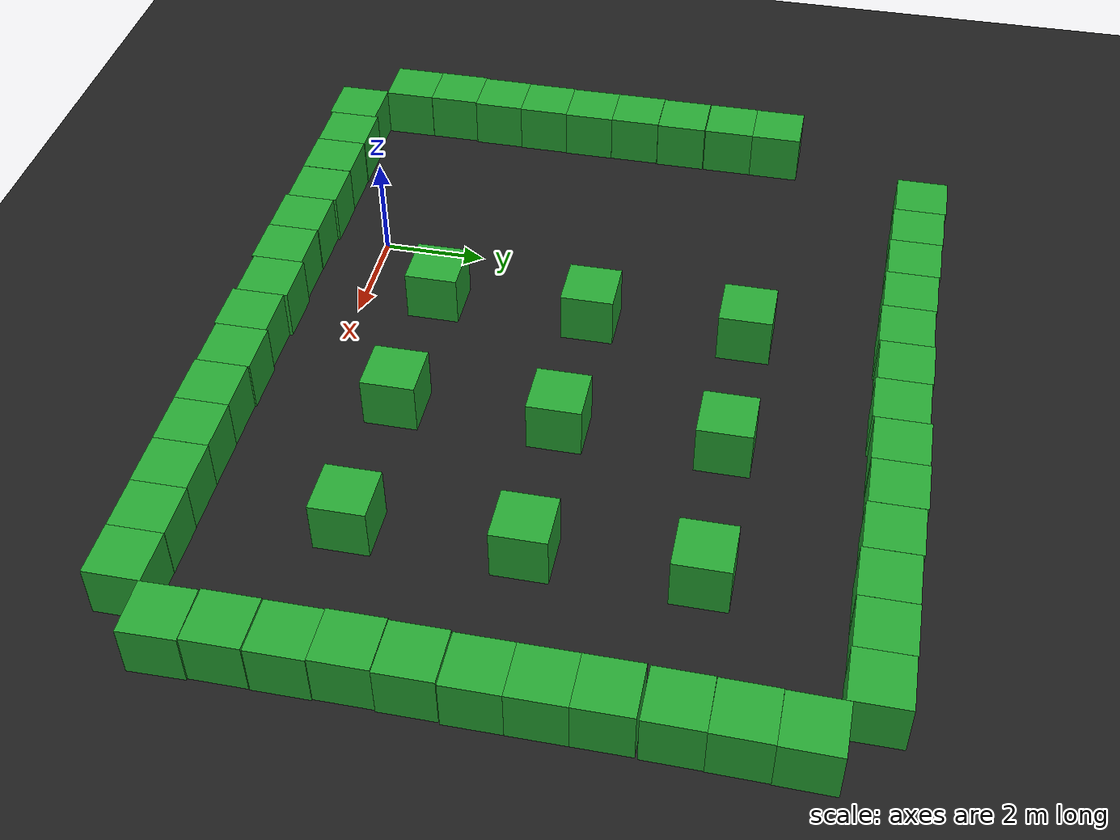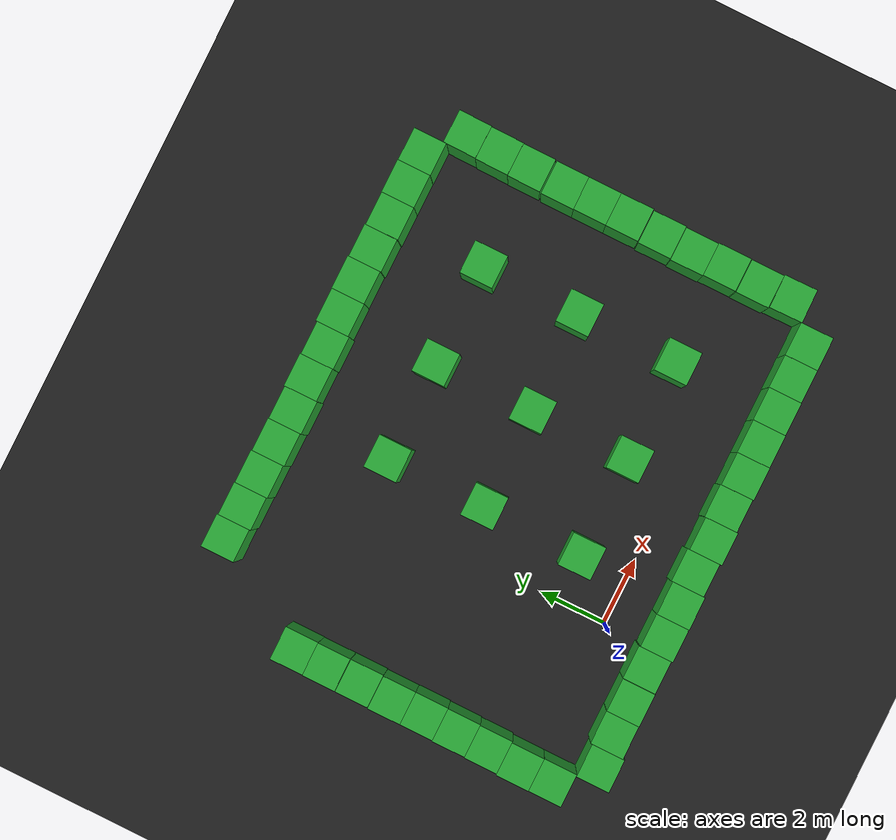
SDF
<sdf version="1.4">
 <world name="default">
  <light name="sun" type="directional">
   <pose>0 0 10 0 -0 0</pose>
   <diffuse>0.8 0.8 0.8 1</diffuse>
   <specular>0.2 0.2 0.2 1</specular>
   <attenuation>
    <range>1000</range>
    <constant>0.9</constant>
    <linear>0.01</linear>
    <quadratic>0.001</quadratic>
   </attenuation>
   <direction>-0.5 0.1 -0.9</direction>
  </light>
  <model name="ground_plane">
   <static>1</static>
   <link name="link">
    <collision name="collision">
     <geometry><plane><normal>0 0 1</normal><size>100 100</size></plane></geometry>
     <surface><friction><ode><mu>100</mu><mu2>50</mu2></ode></friction></surface>
    </collision>
    <visual name="visual">
     <cast_shadows>0</cast_shadows>
     <geometry><plane><normal>0 0 1</normal><size>100 100</size></plane></geometry>
     <material>
      <script><uri>file://media/materials/scripts/gazebo.material</uri><name>Gazebo/Black</name></script>
     </material>
    </visual>
    <velocity_decay><linear>0</linear><angular>0</angular></velocity_decay>
   </link>
  </model>
  <physics type="ode">
   <max_step_size>0.001</max_step_size>
   <real_time_factor>1</real_time_factor>
   <real_time_update_rate>1000</real_time_update_rate>
   <gravity>0 0 -9.8</gravity>
  </physics>
  <scene><ambient>0.4 0.4 0.4 1</ambient><background>0.7 0.7 0.7 1</background><shadows>1</shadows></scene>
  <spherical_coordinates>
   <surface_model>EARTH_WGS84</surface_model>
   <latitude_deg>0</latitude_deg>
   <longitude_deg>0</longitude_deg>
   <elevation>0</elevation>
   <heading_deg>0</heading_deg>
  </spherical_coordinates>
  <model name="unit_box_1">
   <pose>7.48187 1.49496 0.5 0 -0 0</pose>
   <link name="link">
    <inertial>
     <mass>1</mass>
     <inertia><ixx>1</ixx><ixy>0</ixy><ixz>0</ixz><iyy>1</iyy><iyz>0</iyz><izz>1</izz></inertia>
    </inertial>
    <collision name="collision"><geometry><box><size>1 1 1</size></box></geometry></collision>
    <visual name="visual">
     <geometry><box><size>1 1 1</size></box></geometry>
     <material>
      <script><uri>file://media/materials/scripts/gazebo.material</uri><name>Gazebo/Green</name></script>
     </material>
    </visual>
    <velocity_decay><linear>0</linear><angular>0</angular></velocity_decay>
   </link>
   <static>0</static>
  </model>
  <model name="unit_box_2">
   <pose>4.47149 1.48551 0.5 0 -0 0</pose>
   <link name="link">
    <inertial>
     <mass>1</mass>
     <inertia><ixx>1</ixx><ixy>0</ixy><ixz>0</ixz><iyy>1</iyy><iyz>0</iyz><izz>1</izz></inertia>
    </inertial>
    <collision name="collision"><geometry><box><size>1 1 1</size></box></geometry></collision>
    <visual name="visual">
     <geometry><box><size>1 1 1</size></box></geometry>
     <material>
      <script><uri>file://media/materials/scripts/gazebo.material</uri><name>Gazebo/Green</name></script>
     </material>
    </visual>
    <velocity_decay><linear>0</linear><angular>0</angular></velocity_decay>
   </link>
   <static>0</static>
  </model>
  <model name="unit_box_3">
   <pose>1.4769 1.48379 0.5 0 -0 0</pose>
   <link name="link">
    <inertial>
     <mass>1</mass>
     <inertia><ixx>1</ixx><ixy>0</ixy><ixz>0</ixz><iyy>1</iyy><iyz>0</iyz><izz>1</izz></inertia>
    </inertial>
    <collision name="collision"><geometry><box><size>1 1 1</size></box></geometry></collision>
    <visual name="visual">
     <geometry><box><size>1 1 1</size></box></geometry>
     <material>
      <script><uri>file://media/materials/scripts/gazebo.material</uri><name>Gazebo/Green</name></script>
     </material>
    </visual>
    <velocity_decay><linear>0</linear><angular>0</angular></velocity_decay>
   </link>
   <static>0</static>
  </model>
  <model name="unit_box_4">
   <pose>7.47944 4.53436 0.5 0 -0 0</pose>
   <link name="link">
    <inertial>
     <mass>1</mass>
     <inertia><ixx>1</ixx><ixy>0</ixy><ixz>0</ixz><iyy>1</iyy><iyz>0</iyz><izz>1</izz></inertia>
    </inertial>
    <collision name="collision"><geometry><box><size>1 1 1</size></box></geometry></collision>
    <visual name="visual">
     <geometry><box><size>1 1 1</size></box></geometry>
     <material>
      <script><uri>file://media/materials/scripts/gazebo.material</uri><name>Gazebo/Green</name></script>
     </material>
    </visual>
    <velocity_decay><linear>0</linear><angular>0</angular></velocity_decay>
   </link>
   <static>0</static>
  </model>
  <model name="unit_box_5">
   <pose>4.4867 4.49816 0.5 0 -0 0</pose>
   <link name="link">
    <inertial>
     <mass>1</mass>
     <inertia><ixx>1</ixx><ixy>0</ixy><ixz>0</ixz><iyy>1</iyy><iyz>0</iyz><izz>1</izz></inertia>
    </inertial>
    <collision name="collision"><geometry><box><size>1 1 1</size></box></geometry></collision>
    <visual name="visual">
     <geometry><box><size>1 1 1</size></box></geometry>
     <material>
      <script><uri>file://media/materials/scripts/gazebo.material</uri><name>Gazebo/Green</name></script>
     </material>
    </visual>
    <velocity_decay><linear>0</linear><angular>0</angular></velocity_decay>
   </link>
   <static>0</static>
  </model>
  <model name="unit_box_6">
   <pose>1.51126 4.51616 0.5 0 -0 0</pose>
   <link name="link">
    <inertial>
     <mass>1</mass>
     <inertia><ixx>1</ixx><ixy>0</ixy><ixz>0</ixz><iyy>1</iyy><iyz>0</iyz><izz>1</izz></inertia>
    </inertial>
    <collision name="collision"><geometry><box><size>1 1 1</size></box></geometry></collision>
    <visual name="visual">
     <geometry><box><size>1 1 1</size></box></geometry>
     <material>
      <script><uri>file://media/materials/scripts/gazebo.material</uri><name>Gazebo/Green</name></script>
     </material>
    </visual>
    <velocity_decay><linear>0</linear><angular>0</angular></velocity_decay>
   </link>
   <static>0</static>
  </model>
  <model name="unit_box_7">
   <pose>7.49678 7.51065 0.5 0 -0 0</pose>
   <link name="link">
    <inertial>
     <mass>1</mass>
     <inertia><ixx>1</ixx><ixy>0</ixy><ixz>0</ixz><iyy>1</iyy><iyz>0</iyz><izz>1</izz></inertia>
    </inertial>
    <collision name="collision"><geometry><box><size>1 1 1</size></box></geometry></collision>
    <visual name="visual">
     <geometry><box><size>1 1 1</size></box></geometry>
     <material>
      <script><uri>file://media/materials/scripts/gazebo.material</uri><name>Gazebo/Green</name></script>
     </material>
    </visual>
    <velocity_decay><linear>0</linear><angular>0</angular></velocity_decay>
   </link>
   <static>0</static>
  </model>
  <model name="unit_box_8">
   <pose>4.47408 7.49427 0.5 0 -0 0</pose>
   <link name="link">
    <inertial>
     <mass>1</mass>
     <inertia><ixx>1</ixx><ixy>0</ixy><ixz>0</ixz><iyy>1</iyy><iyz>0</iyz><izz>1</izz></inertia>
    </inertial>
    <collision name="collision"><geometry><box><size>1 1 1</size></box></geometry></collision>
    <visual name="visual">
     <geometry><box><size>1 1 1</size></box></geometry>
     <material>
      <script><uri>file://media/materials/scripts/gazebo.material</uri><name>Gazebo/Green</name></script>
     </material>
    </visual>
    <velocity_decay><linear>0</linear><angular>0</angular></velocity_decay>
   </link>
   <static>0</static>
  </model>
  <model name="unit_box_9">
   <pose>1.50449 7.50181 0.5 0 -0 0</pose>
   <link name="link">
    <inertial>
     <mass>1</mass>
     <inertia><ixx>1</ixx><ixy>0</ixy><ixz>0</ixz><iyy>1</iyy><iyz>0</iyz><izz>1</izz></inertia>
    </inertial>
    <collision name="collision"><geometry><box><size>1 1 1</size></box></geometry></collision>
    <visual name="visual">
     <geometry><box><size>1 1 1</size></box></geometry>
     <material>
      <script><uri>file://media/materials/scripts/gazebo.material</uri><name>Gazebo/Green</name></script>
     </material>
    </visual>
    <velocity_decay><linear>0</linear><angular>0</angular></velocity_decay>
   </link>
   <static>0</static>
  </model>
  <model name="unit_box_1_1">
   <pose>10.4257 1.43948 0.5 0 -0 0.000235</pose>
   <link name="link">
    <inertial>
     <mass>1</mass>
     <inertia><ixx>1</ixx><ixy>0</ixy><ixz>0</ixz><iyy>1</iyy><iyz>0</iyz><izz>1</izz></inertia>
    </inertial>
    <collision name="collision"><geometry><box><size>1 1 1</size></box></geometry></collision>
    <visual name="visual">
     <geometry><box><size>1 1 1</size></box></geometry>
     <material>
      <script><uri>file://media/materials/scripts/gazebo.material</uri><name>Gazebo/Green</name></script>
     </material>
    </visual>
    <velocity_decay><linear>0</linear><angular>0</angular></velocity_decay>
   </link>
   <static>0</static>
  </model>
  <model name="unit_box_2_1">
   <pose>10.4062 2.43948 0.5 0 -0 0.000237</pose>
   <link name="link">
    <inertial>
     <mass>1</mass>
     <inertia><ixx>1</ixx><ixy>0</ixy><ixz>0</ixz><iyy>1</iyy><iyz>0</iyz><izz>1</izz></inertia>
    </inertial>
    <collision name="collision"><geometry><box><size>1 1 1</size></box></geometry></collision>
    <visual name="visual">
     <geometry><box><size>1 1 1</size></box></geometry>
     <material>
      <script><uri>file://media/materials/scripts/gazebo.material</uri><name>Gazebo/Green</name></script>
     </material>
    </visual>
    <velocity_decay><linear>0</linear><angular>0</angular></velocity_decay>
   </link>
   <static>0</static>
  </model>
  <model name="unit_box_3_1">
   <pose>10.4315 3.45052 0.5 0 -0 0</pose>
   <link name="link">
    <inertial>
     <mass>1</mass>
     <inertia><ixx>1</ixx><ixy>0</ixy><ixz>0</ixz><iyy>1</iyy><iyz>0</iyz><izz>1</izz></inertia>
    </inertial>
    <collision name="collision"><geometry><box><size>1 1 1</size></box></geometry></collision>
    <visual name="visual">
     <geometry><box><size>1 1 1</size></box></geometry>
     <material>
      <script><uri>file://media/materials/scripts/gazebo.material</uri><name>Gazebo/Green</name></script>
     </material>
    </visual>
    <velocity_decay><linear>0</linear><angular>0</angular></velocity_decay>
   </link>
   <static>0</static>
  </model>
  <model name="unit_box_4_1">
   <pose>10.4608 4.47156 0.5 0 -0 1e-06</pose>
   <link name="link">
    <inertial>
     <mass>1</mass>
     <inertia><ixx>1</ixx><ixy>0</ixy><ixz>0</ixz><iyy>1</iyy><iyz>0</iyz><izz>1</izz></inertia>
    </inertial>
    <collision name="collision"><geometry><box><size>1 1 1</size></box></geometry></collision>
    <visual name="visual">
     <geometry><box><size>1 1 1</size></box></geometry>
     <material>
      <script><uri>file://media/materials/scripts/gazebo.material</uri><name>Gazebo/Green</name></script>
     </material>
    </visual>
    <velocity_decay><linear>0</linear><angular>0</angular></velocity_decay>
   </link>
   <static>0</static>
  </model>
  <model name="unit_box_5_0">
   <pose>10.4621 5.47156 0.5 0 -0 2e-06</pose>
   <link name="link">
    <inertial>
     <mass>1</mass>
     <inertia><ixx>1</ixx><ixy>0</ixy><ixz>0</ixz><iyy>1</iyy><iyz>0</iyz><izz>1</izz></inertia>
    </inertial>
    <collision name="collision"><geometry><box><size>1 1 1</size></box></geometry></collision>
    <visual name="visual">
     <geometry><box><size>1 1 1</size></box></geometry>
     <material>
      <script><uri>file://media/materials/scripts/gazebo.material</uri><name>Gazebo/Green</name></script>
     </material>
    </visual>
    <velocity_decay><linear>0</linear><angular>0</angular></velocity_decay>
   </link>
   <static>0</static>
  </model>
  <model name="unit_box_6_0">
   <pose>10.4615 6.47156 0.5 0 -0 0</pose>
   <link name="link">
    <inertial>
     <mass>1</mass>
     <inertia><ixx>1</ixx><ixy>0</ixy><ixz>0</ixz><iyy>1</iyy><iyz>0</iyz><izz>1</izz></inertia>
    </inertial>
    <collision name="collision"><geometry><box><size>1 1 1</size></box></geometry></collision>
    <visual name="visual">
     <geometry><box><size>1 1 1</size></box></geometry>
     <material>
      <script><uri>file://media/materials/scripts/gazebo.material</uri><name>Gazebo/Green</name></script>
     </material>
    </visual>
    <velocity_decay><linear>0</linear><angular>0</angular></velocity_decay>
   </link>
   <static>0</static>
  </model>
  <model name="unit_box_7_0">
   <pose>10.484 7.51518 0.5 -0 -0 -0.008078</pose>
   <link name="link">
    <inertial>
     <mass>1</mass>
     <inertia><ixx>1</ixx><ixy>0</ixy><ixz>0</ixz><iyy>1</iyy><iyz>0</iyz><izz>1</izz></inertia>
    </inertial>
    <collision name="collision"><geometry><box><size>1 1 1</size></box></geometry></collision>
    <visual name="visual">
     <geometry><box><size>1 1 1</size></box></geometry>
     <material>
      <script><uri>file://media/materials/scripts/gazebo.material</uri><name>Gazebo/Green</name></script>
     </material>
    </visual>
    <velocity_decay><linear>0</linear><angular>0</angular></velocity_decay>
   </link>
   <static>0</static>
  </model>
  <model name="unit_box_8_0">
   <pose>10.5037 8.5177 0.5 0 -0 -0.013468</pose>
   <link name="link">
    <inertial>
     <mass>1</mass>
     <inertia><ixx>1</ixx><ixy>0</ixy><ixz>0</ixz><iyy>1</iyy><iyz>0</iyz><izz>1</izz></inertia>
    </inertial>
    <collision name="collision"><geometry><box><size>1 1 1</size></box></geometry></collision>
    <visual name="visual">
     <geometry><box><size>1 1 1</size></box></geometry>
     <material>
      <script><uri>file://media/materials/scripts/gazebo.material</uri><name>Gazebo/Green</name></script>
     </material>
    </visual>
    <velocity_decay><linear>0</linear><angular>0</angular></velocity_decay>
   </link>
   <static>0</static>
  </model>
  <model name="unit_box_9_0">
   <pose>10.5299 9.51891 0.5 0 -0 -0.016358</pose>
   <link name="link">
    <inertial>
     <mass>1</mass>
     <inertia><ixx>1</ixx><ixy>0</ixy><ixz>0</ixz><iyy>1</iyy><iyz>0</iyz><izz>1</izz></inertia>
    </inertial>
    <collision name="collision"><geometry><box><size>1 1 1</size></box></geometry></collision>
    <visual name="visual">
     <geometry><box><size>1 1 1</size></box></geometry>
     <material>
      <script><uri>file://media/materials/scripts/gazebo.material</uri><name>Gazebo/Green</name></script>
     </material>
    </visual>
    <velocity_decay><linear>0</linear><angular>0</angular></velocity_decay>
   </link>
   <static>0</static>
  </model>
  <model name="unit_box_10">
   <pose>9.53766 10.4254 0.5 0 -0 -0.002702</pose>
   <link name="link">
    <inertial>
     <mass>1</mass>
     <inertia><ixx>1</ixx><ixy>0</ixy><ixz>0</ixz><iyy>1</iyy><iyz>0</iyz><izz>1</izz></inertia>
    </inertial>
    <collision name="collision"><geometry><box><size>1 1 1</size></box></geometry></collision>
    <visual name="visual">
     <geometry><box><size>1 1 1</size></box></geometry>
     <material>
      <script><uri>file://media/materials/scripts/gazebo.material</uri><name>Gazebo/Green</name></script>
     </material>
    </visual>
    <velocity_decay><linear>0</linear><angular>0</angular></velocity_decay>
   </link>
   <static>0</static>
  </model>
  <model name="unit_box_11">
   <pose>8.53749 10.4392 0.5 0 -0 -0.002522</pose>
   <link name="link">
    <inertial>
     <mass>1</mass>
     <inertia><ixx>1</ixx><ixy>0</ixy><ixz>0</ixz><iyy>1</iyy><iyz>0</iyz><izz>1</izz></inertia>
    </inertial>
    <collision name="collision"><geometry><box><size>1 1 1</size></box></geometry></collision>
    <visual name="visual">
     <geometry><box><size>1 1 1</size></box></geometry>
     <material>
      <script><uri>file://media/materials/scripts/gazebo.material</uri><name>Gazebo/Green</name></script>
     </material>
    </visual>
    <velocity_decay><linear>0</linear><angular>0</angular></velocity_decay>
   </link>
   <static>0</static>
  </model>
  <model name="unit_box_12">
   <pose>7.53708 10.4359 0.5 0 -0 -0.002012</pose>
   <link name="link">
    <inertial>
     <mass>1</mass>
     <inertia><ixx>1</ixx><ixy>0</ixy><ixz>0</ixz><iyy>1</iyy><iyz>0</iyz><izz>1</izz></inertia>
    </inertial>
    <collision name="collision"><geometry><box><size>1 1 1</size></box></geometry></collision>
    <visual name="visual">
     <geometry><box><size>1 1 1</size></box></geometry>
     <material>
      <script><uri>file://media/materials/scripts/gazebo.material</uri><name>Gazebo/Green</name></script>
     </material>
    </visual>
    <velocity_decay><linear>0</linear><angular>0</angular></velocity_decay>
   </link>
   <static>0</static>
  </model>
  <model name="unit_box_13">
   <pose>6.53654 10.4622 0.5 -0 -0 -0.001</pose>
   <link name="link">
    <inertial>
     <mass>1</mass>
     <inertia><ixx>1</ixx><ixy>0</ixy><ixz>0</ixz><iyy>1</iyy><iyz>0</iyz><izz>1</izz></inertia>
    </inertial>
    <collision name="collision"><geometry><box><size>1 1 1</size></box></geometry></collision>
    <visual name="visual">
     <geometry><box><size>1 1 1</size></box></geometry>
     <material>
      <script><uri>file://media/materials/scripts/gazebo.material</uri><name>Gazebo/Green</name></script>
     </material>
    </visual>
    <velocity_decay><linear>0</linear><angular>0</angular></velocity_decay>
   </link>
   <static>0</static>
  </model>
  <model name="unit_box_14">
   <pose>5.53621 10.4908 0.5 0 0 -0.000288</pose>
   <link name="link">
    <inertial>
     <mass>1</mass>
     <inertia><ixx>1</ixx><ixy>0</ixy><ixz>0</ixz><iyy>1</iyy><iyz>0</iyz><izz>1</izz></inertia>
    </inertial>
    <collision name="collision"><geometry><box><size>1 1 1</size></box></geometry></collision>
    <visual name="visual">
     <geometry><box><size>1 1 1</size></box></geometry>
     <material>
      <script><uri>file://media/materials/scripts/gazebo.material</uri><name>Gazebo/Green</name></script>
     </material>
    </visual>
    <velocity_decay><linear>0</linear><angular>0</angular></velocity_decay>
   </link>
   <static>0</static>
  </model>
  <model name="unit_box_15">
   <pose>4.53608 10.4813 0.5 0 0 -6.3e-05</pose>
   <link name="link">
    <inertial>
     <mass>1</mass>
     <inertia><ixx>1</ixx><ixy>0</ixy><ixz>0</ixz><iyy>1</iyy><iyz>0</iyz><izz>1</izz></inertia>
    </inertial>
    <collision name="collision"><geometry><box><size>1 1 1</size></box></geometry></collision>
    <visual name="visual">
     <geometry><box><size>1 1 1</size></box></geometry>
     <material>
      <script><uri>file://media/materials/scripts/gazebo.material</uri><name>Gazebo/Green</name></script>
     </material>
    </visual>
    <velocity_decay><linear>0</linear><angular>0</angular></velocity_decay>
   </link>
   <static>0</static>
  </model>
  <model name="unit_box_16">
   <pose>3.53602 10.4427 0.5 0 -0 1.9e-05</pose>
   <link name="link">
    <inertial>
     <mass>1</mass>
     <inertia><ixx>1</ixx><ixy>0</ixy><ixz>0</ixz><iyy>1</iyy><iyz>0</iyz><izz>1</izz></inertia>
    </inertial>
    <collision name="collision"><geometry><box><size>1 1 1</size></box></geometry></collision>
    <visual name="visual">
     <geometry><box><size>1 1 1</size></box></geometry>
     <material>
      <script><uri>file://media/materials/scripts/gazebo.material</uri><name>Gazebo/Green</name></script>
     </material>
    </visual>
    <velocity_decay><linear>0</linear><angular>0</angular></velocity_decay>
   </link>
   <static>0</static>
  </model>
  <model name="unit_box_17">
   <pose>2.536 10.4681 0.5 0 -0 -6e-06</pose>
   <link name="link">
    <inertial>
     <mass>1</mass>
     <inertia><ixx>1</ixx><ixy>0</ixy><ixz>0</ixz><iyy>1</iyy><iyz>0</iyz><izz>1</izz></inertia>
    </inertial>
    <collision name="collision"><geometry><box><size>1 1 1</size></box></geometry></collision>
    <visual name="visual">
     <geometry><box><size>1 1 1</size></box></geometry>
     <material>
      <script><uri>file://media/materials/scripts/gazebo.material</uri><name>Gazebo/Green</name></script>
     </material>
    </visual>
    <velocity_decay><linear>0</linear><angular>0</angular></velocity_decay>
   </link>
   <static>0</static>
  </model>
  <model name="unit_box_18">
   <pose>1.53596 10.4424 0.5 0 0 -6.3e-05</pose>
   <link name="link">
    <inertial>
     <mass>1</mass>
     <inertia><ixx>1</ixx><ixy>0</ixy><ixz>0</ixz><iyy>1</iyy><iyz>0</iyz><izz>1</izz></inertia>
    </inertial>
    <collision name="collision"><geometry><box><size>1 1 1</size></box></geometry></collision>
    <visual name="visual">
     <geometry><box><size>1 1 1</size></box></geometry>
     <material>
      <script><uri>file://media/materials/scripts/gazebo.material</uri><name>Gazebo/Green</name></script>
     </material>
    </visual>
    <velocity_decay><linear>0</linear><angular>0</angular></velocity_decay>
   </link>
   <static>0</static>
  </model>
  <model name="unit_box_19">
   <pose>0.535957 10.4647 0.5 0 -0 -6.5e-05</pose>
   <link name="link">
    <inertial>
     <mass>1</mass>
     <inertia><ixx>1</ixx><ixy>0</ixy><ixz>0</ixz><iyy>1</iyy><iyz>0</iyz><izz>1</izz></inertia>
    </inertial>
    <collision name="collision"><geometry><box><size>1 1 1</size></box></geometry></collision>
    <visual name="visual">
     <geometry><box><size>1 1 1</size></box></geometry>
     <material>
      <script><uri>file://media/materials/scripts/gazebo.material</uri><name>Gazebo/Green</name></script>
     </material>
    </visual>
    <velocity_decay><linear>0</linear><angular>0</angular></velocity_decay>
   </link>
   <static>0</static>
  </model>
  <model name="unit_box_20">
   <pose>-0.464042 10.4919 0.5 0 -0 -6.5e-05</pose>
   <link name="link">
    <inertial>
     <mass>1</mass>
     <inertia><ixx>1</ixx><ixy>0</ixy><ixz>0</ixz><iyy>1</iyy><iyz>0</iyz><izz>1</izz></inertia>
    </inertial>
    <collision name="collision"><geometry><box><size>1 1 1</size></box></geometry></collision>
    <visual name="visual">
     <geometry><box><size>1 1 1</size></box></geometry>
     <material>
      <script><uri>file://media/materials/scripts/gazebo.material</uri><name>Gazebo/Green</name></script>
     </material>
    </visual>
    <velocity_decay><linear>0</linear><angular>0</angular></velocity_decay>
   </link>
   <static>0</static>
  </model>
  <model name="unit_box_21">
   <pose>-1.46406 10.512 0.5 0 -0 -6.9e-05</pose>
   <link name="link">
    <inertial>
     <mass>1</mass>
     <inertia><ixx>1</ixx><ixy>0</ixy><ixz>0</ixz><iyy>1</iyy><iyz>0</iyz><izz>1</izz></inertia>
    </inertial>
    <collision name="collision"><geometry><box><size>1 1 1</size></box></geometry></collision>
    <visual name="visual">
     <geometry><box><size>1 1 1</size></box></geometry>
     <material>
      <script><uri>file://media/materials/scripts/gazebo.material</uri><name>Gazebo/Green</name></script>
     </material>
    </visual>
    <velocity_decay><linear>0</linear><angular>0</angular></velocity_decay>
   </link>
   <static>0</static>
  </model>
  <model name="unit_box_22">
   <pose>-2.46414 10.5428 0.5 0 -0 4.3e-05</pose>
   <link name="link">
    <inertial>
     <mass>1</mass>
     <inertia><ixx>1</ixx><ixy>0</ixy><ixz>0</ixz><iyy>1</iyy><iyz>0</iyz><izz>1</izz></inertia>
    </inertial>
    <collision name="collision"><geometry><box><size>1 1 1</size></box></geometry></collision>
    <visual name="visual">
     <geometry><box><size>1 1 1</size></box></geometry>
     <material>
      <script><uri>file://media/materials/scripts/gazebo.material</uri><name>Gazebo/Green</name></script>
     </material>
    </visual>
    <velocity_decay><linear>0</linear><angular>0</angular></velocity_decay>
   </link>
   <static>0</static>
  </model>
  <model name="unit_box_23">
   <pose>10.4166 0.419065 0.5 0 -0 0</pose>
   <link name="link">
    <inertial>
     <mass>1</mass>
     <inertia><ixx>1</ixx><ixy>0</ixy><ixz>0</ixz><iyy>1</iyy><iyz>0</iyz><izz>1</izz></inertia>
    </inertial>
    <collision name="collision"><geometry><box><size>1 1 1</size></box></geometry></collision>
    <visual name="visual">
     <geometry><box><size>1 1 1</size></box></geometry>
     <material>
      <script><uri>file://media/materials/scripts/gazebo.material</uri><name>Gazebo/Green</name></script>
     </material>
    </visual>
    <velocity_decay><linear>0</linear><angular>0</angular></velocity_decay>
   </link>
   <static>0</static>
  </model>
  <model name="unit_box_1_0">
   <pose>10.4547 -0.592221 0.5 0 -0 0.018041</pose>
   <link name="link">
    <inertial>
     <mass>1</mass>
     <inertia><ixx>1</ixx><ixy>0</ixy><ixz>0</ixz><iyy>1</iyy><iyz>0</iyz><izz>1</izz></inertia>
    </inertial>
    <collision name="collision"><geometry><box><size>1 1 1</size></box></geometry></collision>
    <visual name="visual">
     <geometry><box><size>1 1 1</size></box></geometry>
     <material>
      <script><uri>file://media/materials/scripts/gazebo.material</uri><name>Gazebo/Green</name></script>
     </material>
    </visual>
    <velocity_decay><linear>0</linear><angular>0</angular></velocity_decay>
   </link>
   <static>0</static>
  </model>
  <model name="unit_box_2_0">
   <pose>9.46413 -1.56981 0.5 0 -0 0.001952</pose>
   <link name="link">
    <inertial>
     <mass>1</mass>
     <inertia><ixx>1</ixx><ixy>0</ixy><ixz>0</ixz><iyy>1</iyy><iyz>0</iyz><izz>1</izz></inertia>
    </inertial>
    <collision name="collision"><geometry><box><size>1 1 1</size></box></geometry></collision>
    <visual name="visual">
     <geometry><box><size>1 1 1</size></box></geometry>
     <material>
      <script><uri>file://media/materials/scripts/gazebo.material</uri><name>Gazebo/Green</name></script>
     </material>
    </visual>
    <velocity_decay><linear>0</linear><angular>0</angular></velocity_decay>
   </link>
   <static>0</static>
  </model>
  <model name="unit_box_3_0">
   <pose>8.46402 -1.56734 0.5 0 -0 0.001803</pose>
   <link name="link">
    <inertial>
     <mass>1</mass>
     <inertia><ixx>1</ixx><ixy>0</ixy><ixz>0</ixz><iyy>1</iyy><iyz>0</iyz><izz>1</izz></inertia>
    </inertial>
    <collision name="collision"><geometry><box><size>1 1 1</size></box></geometry></collision>
    <visual name="visual">
     <geometry><box><size>1 1 1</size></box></geometry>
     <material>
      <script><uri>file://media/materials/scripts/gazebo.material</uri><name>Gazebo/Green</name></script>
     </material>
    </visual>
    <velocity_decay><linear>0</linear><angular>0</angular></velocity_decay>
   </link>
   <static>0</static>
  </model>
  <model name="unit_box_4_0">
   <pose>7.46397 -1.57533 0.5 0 -0 0.001701</pose>
   <link name="link">
    <inertial>
     <mass>1</mass>
     <inertia><ixx>1</ixx><ixy>0</ixy><ixz>0</ixz><iyy>1</iyy><iyz>0</iyz><izz>1</izz></inertia>
    </inertial>
    <collision name="collision"><geometry><box><size>1 1 1</size></box></geometry></collision>
    <visual name="visual">
     <geometry><box><size>1 1 1</size></box></geometry>
     <material>
      <script><uri>file://media/materials/scripts/gazebo.material</uri><name>Gazebo/Green</name></script>
     </material>
    </visual>
    <velocity_decay><linear>0</linear><angular>0</angular></velocity_decay>
   </link>
   <static>0</static>
  </model>
  <model name="unit_box_5_1">
   <pose>6.46387 -1.5793 0.5 0 -0 0.001565</pose>
   <link name="link">
    <inertial>
     <mass>1</mass>
     <inertia><ixx>1</ixx><ixy>0</ixy><ixz>0</ixz><iyy>1</iyy><iyz>0</iyz><izz>1</izz></inertia>
    </inertial>
    <collision name="collision"><geometry><box><size>1 1 1</size></box></geometry></collision>
    <visual name="visual">
     <geometry><box><size>1 1 1</size></box></geometry>
     <material>
      <script><uri>file://media/materials/scripts/gazebo.material</uri><name>Gazebo/Green</name></script>
     </material>
    </visual>
    <velocity_decay><linear>0</linear><angular>0</angular></velocity_decay>
   </link>
   <static>0</static>
  </model>
  <model name="unit_box_6_1">
   <pose>5.46387 -1.58377 0.5 0 -0 0.001539</pose>
   <link name="link">
    <inertial>
     <mass>1</mass>
     <inertia><ixx>1</ixx><ixy>0</ixy><ixz>0</ixz><iyy>1</iyy><iyz>0</iyz><izz>1</izz></inertia>
    </inertial>
    <collision name="collision"><geometry><box><size>1 1 1</size></box></geometry></collision>
    <visual name="visual">
     <geometry><box><size>1 1 1</size></box></geometry>
     <material>
      <script><uri>file://media/materials/scripts/gazebo.material</uri><name>Gazebo/Green</name></script>
     </material>
    </visual>
    <velocity_decay><linear>0</linear><angular>0</angular></velocity_decay>
   </link>
   <static>0</static>
  </model>
  <model name="unit_box_7_1">
   <pose>4.46374 -1.55715 0.5 0 -0 0.001373</pose>
   <link name="link">
    <inertial>
     <mass>1</mass>
     <inertia><ixx>1</ixx><ixy>0</ixy><ixz>0</ixz><iyy>1</iyy><iyz>0</iyz><izz>1</izz></inertia>
    </inertial>
    <collision name="collision"><geometry><box><size>1 1 1</size></box></geometry></collision>
    <visual name="visual">
     <geometry><box><size>1 1 1</size></box></geometry>
     <material>
      <script><uri>file://media/materials/scripts/gazebo.material</uri><name>Gazebo/Green</name></script>
     </material>
    </visual>
    <velocity_decay><linear>0</linear><angular>0</angular></velocity_decay>
   </link>
   <static>0</static>
  </model>
  <model name="unit_box_8_1">
   <pose>3.46378 -1.59545 0.5 0 -0 0.001354</pose>
   <link name="link">
    <inertial>
     <mass>1</mass>
     <inertia><ixx>1</ixx><ixy>0</ixy><ixz>0</ixz><iyy>1</iyy><iyz>0</iyz><izz>1</izz></inertia>
    </inertial>
    <collision name="collision"><geometry><box><size>1 1 1</size></box></geometry></collision>
    <visual name="visual">
     <geometry><box><size>1 1 1</size></box></geometry>
     <material>
      <script><uri>file://media/materials/scripts/gazebo.material</uri><name>Gazebo/Green</name></script>
     </material>
    </visual>
    <velocity_decay><linear>0</linear><angular>0</angular></velocity_decay>
   </link>
   <static>0</static>
  </model>
  <model name="unit_box_9_1">
   <pose>2.46362 -1.52947 0.5 0 -0 0.001292</pose>
   <link name="link">
    <inertial>
     <mass>1</mass>
     <inertia><ixx>1</ixx><ixy>0</ixy><ixz>0</ixz><iyy>1</iyy><iyz>0</iyz><izz>1</izz></inertia>
    </inertial>
    <collision name="collision"><geometry><box><size>1 1 1</size></box></geometry></collision>
    <visual name="visual">
     <geometry><box><size>1 1 1</size></box></geometry>
     <material>
      <script><uri>file://media/materials/scripts/gazebo.material</uri><name>Gazebo/Green</name></script>
     </material>
    </visual>
    <velocity_decay><linear>0</linear><angular>0</angular></velocity_decay>
   </link>
   <static>0</static>
  </model>
  <model name="unit_box_10_0">
   <pose>1.4636 -1.57479 0.5 0 -0 0.00118</pose>
   <link name="link">
    <inertial>
     <mass>1</mass>
     <inertia><ixx>1</ixx><ixy>0</ixy><ixz>0</ixz><iyy>1</iyy><iyz>0</iyz><izz>1</izz></inertia>
    </inertial>
    <collision name="collision"><geometry><box><size>1 1 1</size></box></geometry></collision>
    <visual name="visual">
     <geometry><box><size>1 1 1</size></box></geometry>
     <material>
      <script><uri>file://media/materials/scripts/gazebo.material</uri><name>Gazebo/Green</name></script>
     </material>
    </visual>
    <velocity_decay><linear>0</linear><angular>0</angular></velocity_decay>
   </link>
   <static>0</static>
  </model>
  <model name="unit_box_11_0">
   <pose>0.46344 -1.56475 0.5 0 -0 0.000904</pose>
   <link name="link">
    <inertial>
     <mass>1</mass>
     <inertia><ixx>1</ixx><ixy>0</ixy><ixz>0</ixz><iyy>1</iyy><iyz>0</iyz><izz>1</izz></inertia>
    </inertial>
    <collision name="collision"><geometry><box><size>1 1 1</size></box></geometry></collision>
    <visual name="visual">
     <geometry><box><size>1 1 1</size></box></geometry>
     <material>
      <script><uri>file://media/materials/scripts/gazebo.material</uri><name>Gazebo/Green</name></script>
     </material>
    </visual>
    <velocity_decay><linear>0</linear><angular>0</angular></velocity_decay>
   </link>
   <static>0</static>
  </model>
  <model name="unit_box_12_0">
   <pose>-0.536645 -1.51739 0.5 0 -0 0.000821</pose>
   <link name="link">
    <inertial>
     <mass>1</mass>
     <inertia><ixx>1</ixx><ixy>0</ixy><ixz>0</ixz><iyy>1</iyy><iyz>0</iyz><izz>1</izz></inertia>
    </inertial>
    <collision name="collision"><geometry><box><size>1 1 1</size></box></geometry></collision>
    <visual name="visual">
     <geometry><box><size>1 1 1</size></box></geometry>
     <material>
      <script><uri>file://media/materials/scripts/gazebo.material</uri><name>Gazebo/Green</name></script>
     </material>
    </visual>
    <velocity_decay><linear>0</linear><angular>0</angular></velocity_decay>
   </link>
   <static>0</static>
  </model>
  <model name="unit_box_13_0">
   <pose>-1.54112 -1.52563 0.5 0 -0 0.000925</pose>
   <link name="link">
    <inertial>
     <mass>1</mass>
     <inertia><ixx>1</ixx><ixy>0</ixy><ixz>0</ixz><iyy>1</iyy><iyz>0</iyz><izz>1</izz></inertia>
    </inertial>
    <collision name="collision"><geometry><box><size>1 1 1</size></box></geometry></collision>
    <visual name="visual">
     <geometry><box><size>1 1 1</size></box></geometry>
     <material>
      <script><uri>file://media/materials/scripts/gazebo.material</uri><name>Gazebo/Green</name></script>
     </material>
    </visual>
    <velocity_decay><linear>0</linear><angular>0</angular></velocity_decay>
   </link>
   <static>0</static>
  </model>
  <model name="unit_box_14_0">
   <pose>-2.54114 -1.51611 0.5 0 -0 0.000934</pose>
   <link name="link">
    <inertial>
     <mass>1</mass>
     <inertia><ixx>1</ixx><ixy>0</ixy><ixz>0</ixz><iyy>1</iyy><iyz>0</iyz><izz>1</izz></inertia>
    </inertial>
    <collision name="collision"><geometry><box><size>1 1 1</size></box></geometry></collision>
    <visual name="visual">
     <geometry><box><size>1 1 1</size></box></geometry>
     <material>
      <script><uri>file://media/materials/scripts/gazebo.material</uri><name>Gazebo/Green</name></script>
     </material>
    </visual>
    <velocity_decay><linear>0</linear><angular>0</angular></velocity_decay>
   </link>
   <static>0</static>
  </model>
  <model name="unit_box_15_0">
   <pose>-3.54108 -1.57619 0.5 0 -0 0.000934</pose>
   <link name="link">
    <inertial>
     <mass>1</mass>
     <inertia><ixx>1</ixx><ixy>0</ixy><ixz>0</ixz><iyy>1</iyy><iyz>0</iyz><izz>1</izz></inertia>
    </inertial>
    <collision name="collision"><geometry><box><size>1 1 1</size></box></geometry></collision>
    <visual name="visual">
     <geometry><box><size>1 1 1</size></box></geometry>
     <material>
      <script><uri>file://media/materials/scripts/gazebo.material</uri><name>Gazebo/Green</name></script>
     </material>
    </visual>
    <velocity_decay><linear>0</linear><angular>0</angular></velocity_decay>
   </link>
   <static>0</static>
  </model>
  <model name="unit_box_16_0">
   <pose>-4.48516 -0.569699 0.5 0 0 -0.000213</pose>
   <link name="link">
    <inertial>
     <mass>1</mass>
     <inertia><ixx>1</ixx><ixy>0</ixy><ixz>0</ixz><iyy>1</iyy><iyz>0</iyz><izz>1</izz></inertia>
    </inertial>
    <collision name="collision"><geometry><box><size>1 1 1</size></box></geometry></collision>
    <visual name="visual">
     <geometry><box><size>1 1 1</size></box></geometry>
     <material>
      <script><uri>file://media/materials/scripts/gazebo.material</uri><name>Gazebo/Green</name></script>
     </material>
    </visual>
    <velocity_decay><linear>0</linear><angular>0</angular></velocity_decay>
   </link>
   <static>0</static>
  </model>
  <model name="unit_box_17_0">
   <pose>-4.4901 0.430342 0.5 0 0 -0.000213</pose>
   <link name="link">
    <inertial>
     <mass>1</mass>
     <inertia><ixx>1</ixx><ixy>0</ixy><ixz>0</ixz><iyy>1</iyy><iyz>0</iyz><izz>1</izz></inertia>
    </inertial>
    <collision name="collision"><geometry><box><size>1 1 1</size></box></geometry></collision>
    <visual name="visual">
     <geometry><box><size>1 1 1</size></box></geometry>
     <material>
      <script><uri>file://media/materials/scripts/gazebo.material</uri><name>Gazebo/Green</name></script>
     </material>
    </visual>
    <velocity_decay><linear>0</linear><angular>0</angular></velocity_decay>
   </link>
   <static>0</static>
  </model>
  <model name="unit_box_18_0">
   <pose>-4.4523 1.43036 0.5 0 -0 -0.000213</pose>
   <link name="link">
    <inertial>
     <mass>1</mass>
     <inertia><ixx>1</ixx><ixy>0</ixy><ixz>0</ixz><iyy>1</iyy><iyz>0</iyz><izz>1</izz></inertia>
    </inertial>
    <collision name="collision"><geometry><box><size>1 1 1</size></box></geometry></collision>
    <visual name="visual">
     <geometry><box><size>1 1 1</size></box></geometry>
     <material>
      <script><uri>file://media/materials/scripts/gazebo.material</uri><name>Gazebo/Green</name></script>
     </material>
    </visual>
    <velocity_decay><linear>0</linear><angular>0</angular></velocity_decay>
   </link>
   <static>0</static>
  </model>
  <model name="unit_box_19_0">
   <pose>-4.43761 2.43036 0.5 0 -0 -0.000204</pose>
   <link name="link">
    <inertial>
     <mass>1</mass>
     <inertia><ixx>1</ixx><ixy>0</ixy><ixz>0</ixz><iyy>1</iyy><iyz>0</iyz><izz>1</izz></inertia>
    </inertial>
    <collision name="collision"><geometry><box><size>1 1 1</size></box></geometry></collision>
    <visual name="visual">
     <geometry><box><size>1 1 1</size></box></geometry>
     <material>
      <script><uri>file://media/materials/scripts/gazebo.material</uri><name>Gazebo/Green</name></script>
     </material>
    </visual>
    <velocity_decay><linear>0</linear><angular>0</angular></velocity_decay>
   </link>
   <static>0</static>
  </model>
  <model name="unit_box_20_0">
   <pose>-4.4204 3.4304 0.5 0 0 -0.00024</pose>
   <link name="link">
    <inertial>
     <mass>1</mass>
     <inertia><ixx>1</ixx><ixy>0</ixy><ixz>0</ixz><iyy>1</iyy><iyz>0</iyz><izz>1</izz></inertia>
    </inertial>
    <collision name="collision"><geometry><box><size>1 1 1</size></box></geometry></collision>
    <visual name="visual">
     <geometry><box><size>1 1 1</size></box></geometry>
     <material>
      <script><uri>file://media/materials/scripts/gazebo.material</uri><name>Gazebo/Green</name></script>
     </material>
    </visual>
    <velocity_decay><linear>0</linear><angular>0</angular></velocity_decay>
   </link>
   <static>0</static>
  </model>
  <model name="unit_box_21_0">
   <pose>-4.42504 4.43051 0.5 -0 -0 -0.000298</pose>
   <link name="link">
    <inertial>
     <mass>1</mass>
     <inertia><ixx>1</ixx><ixy>0</ixy><ixz>0</ixz><iyy>1</iyy><iyz>0</iyz><izz>1</izz></inertia>
    </inertial>
    <collision name="collision"><geometry><box><size>1 1 1</size></box></geometry></collision>
    <visual name="visual">
     <geometry><box><size>1 1 1</size></box></geometry>
     <material>
      <script><uri>file://media/materials/scripts/gazebo.material</uri><name>Gazebo/Green</name></script>
     </material>
    </visual>
    <velocity_decay><linear>0</linear><angular>0</angular></velocity_decay>
   </link>
   <static>0</static>
  </model>
  <model name="unit_box_22_0">
   <pose>-4.40571 5.43565 0.5 0 -0 0</pose>
   <link name="link">
    <inertial>
     <mass>1</mass>
     <inertia><ixx>1</ixx><ixy>0</ixy><ixz>0</ixz><iyy>1</iyy><iyz>0</iyz><izz>1</izz></inertia>
    </inertial>
    <collision name="collision"><geometry><box><size>1 1 1</size></box></geometry></collision>
    <visual name="visual">
     <geometry><box><size>1 1 1</size></box></geometry>
     <material>
      <script><uri>file://media/materials/scripts/gazebo.material</uri><name>Gazebo/Green</name></script>
     </material>
    </visual>
    <velocity_decay><linear>0</linear><angular>0</angular></velocity_decay>
   </link>
   <static>0</static>
  </model>
  <model name="unit_box_23_0">
   <pose>-4.40646 6.45252 0.5 0 0 -3.6e-05</pose>
   <link name="link">
    <inertial>
     <mass>1</mass>
     <inertia><ixx>1</ixx><ixy>0</ixy><ixz>0</ixz><iyy>1</iyy><iyz>0</iyz><izz>1</izz></inertia>
    </inertial>
    <collision name="collision"><geometry><box><size>1 1 1</size></box></geometry></collision>
    <visual name="visual">
     <geometry><box><size>1 1 1</size></box></geometry>
     <material>
      <script><uri>file://media/materials/scripts/gazebo.material</uri><name>Gazebo/Green</name></script>
     </material>
    </visual>
    <velocity_decay><linear>0</linear><angular>0</angular></velocity_decay>
   </link>
   <static>0</static>
  </model>
  <model name="unit_box_24">
   <pose>-4.40059 7.45252 0.5 0 0 -3.6e-05</pose>
   <link name="link">
    <inertial>
     <mass>1</mass>
     <inertia><ixx>1</ixx><ixy>0</ixy><ixz>0</ixz><iyy>1</iyy><iyz>0</iyz><izz>1</izz></inertia>
    </inertial>
    <collision name="collision"><geometry><box><size>1 1 1</size></box></geometry></collision>
    <visual name="visual">
     <geometry><box><size>1 1 1</size></box></geometry>
     <material>
      <script><uri>file://media/materials/scripts/gazebo.material</uri><name>Gazebo/Green</name></script>
     </material>
    </visual>
    <velocity_decay><linear>0</linear><angular>0</angular></velocity_decay>
   </link>
   <static>0</static>
  </model>
 </world>
</sdf>
